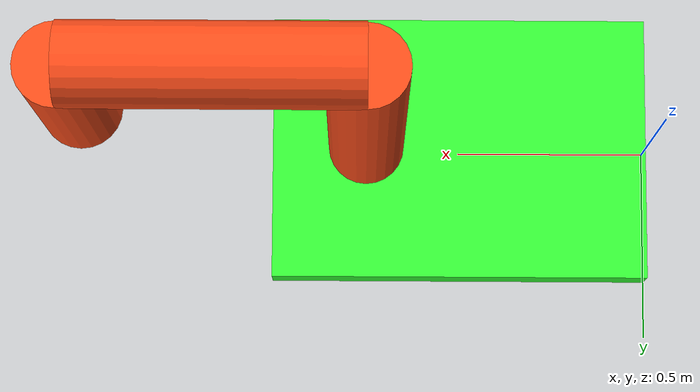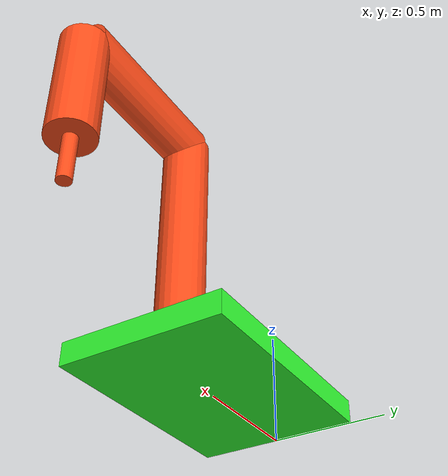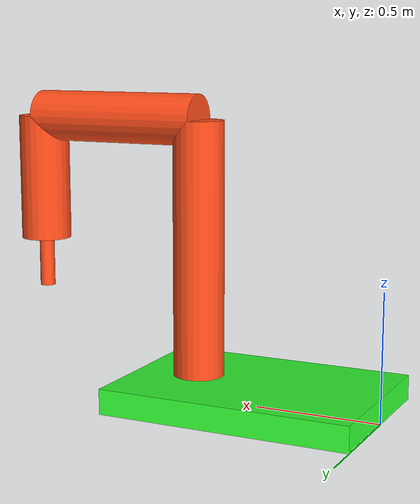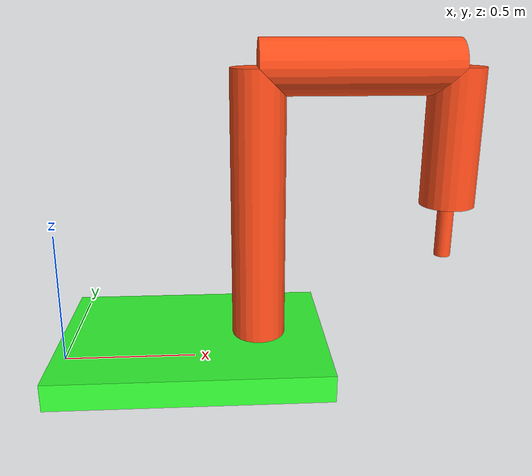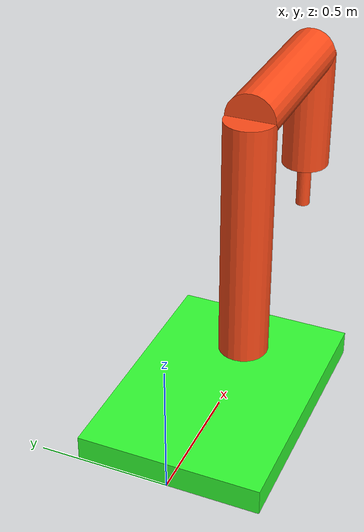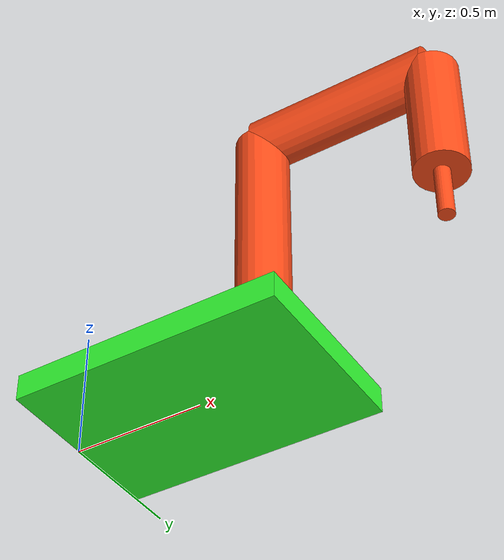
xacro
<?xml version="1.0"?>
<robot xmlns:xacro="http://www.ros.org/wiki/xacro"  name="robot">

    <!-- This is an example of a URDF. -->
    <!-- As we move through the file, new things to note will be pointed out. -->
    <!-- It's not meant an example of GOOD design, but an example of some of the various features of URDF/xacro. -->

    <!-- This will include all the contents of example_include.xacro first. Go check it out! -->
    <xacro:include filename="example_include.xacro" />

    <xacro:property name="arm_1_length" value="1" />
    <xacro:property name="arm_1_radius" value="0.1" />

    <xacro:property name="arm_2_length" value="0.7" />
    <xacro:property name="arm_2_radius" value="0.1" />

    <xacro:property name="arm_3_length" value="0.5" />
    <xacro:property name="arm_3_radius" value="0.1" />

    <xacro:property name="effector_length" value="0.2" />
    <xacro:property name="effector_radius" value="0.03" />

    <!-- This first link called "world" is empty -->
    <link name="world"></link>

    <!-- A simple fixed joint from our empty world link, to our base. -->
    <!-- The base origin is offset from the world origin. -->
    <joint name="base_joint" type="fixed">
        <origin xyz="0.5 0.0 0" rpy="0 0 0"/>
        <parent link="world"/>
        <child link="base_link"/>
    </joint>

    <!-- base_link is a large rectangular plate. Some things to note: -->
    <!-- - We set the visual origin Z to half the box height, so that the link origin sits at the bottom of the box -->
    <!-- - We set the collision to be identical to the visual -->
    <!-- - We specified the colour manually (but still need to enter a name) -->
    <!-- - We specified all the inertial parameters manually -->
    <link name="base_link">
        <visual>
            <origin xyz="0 0 0.05" rpy="0 0 0"/>
            <geometry>
                <box size="1.0 0.7 0.1" />
            </geometry>
            <material name="green">
                <color rgba="0.2 1 0.2 1"/>
            </material>
        </visual>
        <collision>
            <origin xyz="0 0 0.05" rpy="0 0 0"/>
            <geometry>
                <box size="1.0 0.7 0.1" />
            </geometry>
        </collision>
        <inertial>
            <origin xyz="0 0 0.05" rpy="0 0 0"/>
            <mass value="12" />
            <inertia ixx="2.26" ixy="0.0" ixz="0.0" iyy="6.26" iyz="0.0" izz="8.5" />
        </inertial>
    </link>

    <joint name="arm_1_joint" type="revolute">
        <origin xyz="0.25 0 0.10" rpy="0 0 0"/>
        <parent link="base_link"/>
        <child link="arm_1_link"/>
        <axis xyz="0 0 1"/>
        <limit lower="0" upper="${pi}" velocity="100" effort="100"/>
    </joint>

    <!-- arm_link describes the arm -->
    <!-- - We use the "property" feature to define the arm length and radius and use them multiple times -->
    <!-- - The visual/collision origin is set to halfway along the length (similar to the box), but also with a rotation (again using the mathematical features). -->
    <!--   This is because the cylinder extends along the Z axis by default, but we want it to be along the X axis (when the joint is at 0) -->

    <link name="arm_1_link">
        <visual>
            <origin xyz="0 0 ${arm_1_length/2}" rpy="0 0 0"/>
            <geometry>
                <cylinder length="${arm_1_length}" radius="${arm_1_radius}" />
            </geometry>
            <material name="orange" />
        </visual>
        <collision>
            <origin xyz="0 0 ${arm_1_length/2}" rpy="0 0 0"/>
            <geometry>
                <cylinder length="${arm_1_length}" radius="${arm_1_radius}" />
            </geometry>
        </collision>
        <xacro:inertial_cylinder mass="1.0" length="${arm_1_length}" radius="${arm_1_radius}">
            <origin xyz="0 0 ${arm_1_length/2}" rpy="0 0 0"/>
        </xacro:inertial_cylinder>
    </link>

    <joint name="arm_2_joint" type="revolute">
        <origin xyz="0.0 0 ${arm_1_length}" rpy="${pi/2} 0 0"/>
        <parent link="arm_1_link"/>
        <child link="arm_2_link"/>
        <axis xyz="0 0 1"/>
        <limit lower="${-pi/4}" upper="${pi/4}" velocity="100" effort="100"/>
    </joint>

    <link name="arm_2_link">
        <visual>
            <origin xyz="${arm_2_length/2} 0 0" rpy="0 ${-pi/2} 0"/>
            <geometry>
                <cylinder length="${arm_2_length}" radius="${arm_2_radius}" />
            </geometry>
            <material name="orange" />
        </visual>
        <collision>
            <origin xyz="${arm_2_length/2} 0 0" rpy="0 ${-pi/2} 0"/>
            <geometry>
                <cylinder length="${arm_2_length}" radius="${arm_2_radius}" />
            </geometry>
        </collision>
        <xacro:inertial_cylinder mass="1.0" length="${arm_2_length}" radius="${arm_2_radius}">
            <origin xyz="${arm_2_length/2} 0 0" rpy="0 ${-pi/2} 0"/>
        </xacro:inertial_cylinder>
    </link>

    <joint name="arm_3_joint" type="revolute">
        <origin xyz="${arm_2_length} 0 0" rpy="0 ${pi/2} 0"/>
        <parent link="arm_2_link"/>
        <child link="arm_3_link"/>
        <axis xyz="0 0 1"/>
        <limit lower="${-pi}" upper="${pi}" velocity="100" effort="100"/>
    </joint>

    <link name="arm_3_link">
        <visual>
            <origin xyz="0 -${arm_3_length/2} 0" rpy="${pi/2} 0 0"/>
            <geometry>
                <cylinder length="${arm_3_length}" radius="${arm_3_radius}" />
            </geometry>
            <material name="orange" />
        </visual>
        <collision>
            <origin xyz="0 -${arm_3_length/2} 0" rpy="${pi/2} 0 0"/>
            <geometry>
                <cylinder length="${arm_3_length}" radius="${arm_3_radius}" />
            </geometry>
        </collision>
        <xacro:inertial_cylinder mass="1.0" length="${arm_3_length}" radius="${arm_3_radius}">
            <origin xyz="0 -${arm_3_length/2} 0" rpy="${pi/2} 0 0"/>
        </xacro:inertial_cylinder>
    </link>

    <joint name="effector_joint" type="fixed">
        <origin xyz="0 ${-arm_3_length-effector_length} 0" rpy="${pi/2} 0 0"/>
        <parent link="arm_3_link"/>
        <child link="effector_link"/>
    </joint>

    <link name="effector_link">
    <visual>
            <origin xyz="0 0 ${-effector_length/2}" rpy="0 0 0"/>
            <geometry>
                <cylinder length="${effector_length}" radius="${effector_radius}" />
            </geometry>
            <material name="orange" />
        </visual>
        <collision>
            <origin xyz="0 0 ${-effector_length/2}" rpy="0 0 0"/>
            <geometry>
                <cylinder length="${effector_length}" radius="${effector_radius}" />
            </geometry>
        </collision>
        <xacro:inertial_cylinder mass="1.0" length="${arm_3_length}" radius="${arm_3_radius}">
            <origin xyz="0 0 ${-effector_length/2}" rpy="0 0 0"/>
        </xacro:inertial_cylinder>
    </link>

</robot>

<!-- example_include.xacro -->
<robot xmlns:xacro="http://www.ros.org/wiki/xacro" >

    <!-- This file is not a robot in and of itself, it just contains some useful tags that could be included in any robot -->

    <!-- Specify some colours -->

    <material name="white">
        <color rgba="1 1 1 1"/>
    </material>

    <material name="orange">
        <color rgba="1 0.3 0.1 1"/>
    </material>

    <material name="blue">
        <color rgba="0.2 0.2 1 1"/>
    </material>

    <material name="red">
        <color rgba="0.9 0.1 0.1 1"/>
    </material>

    <material name="yellow">
        <color rgba="0.8 0.8 0.0 1"/>
    </material>

    <!-- Specify some standard inertial calculations https://en.wikipedia.org/wiki/List_of_moments_of_inertia -->
    <!-- These make use of xacro's mathematical functionality -->

    <xacro:macro name="inertial_sphere" params="mass radius *origin">
        <inertial>
            <xacro:insert_block name="origin"/>
            <mass value="${mass}" />
            <inertia ixx="${(2/5) * mass * (radius*radius)}" ixy="0.0" ixz="0.0"
                    iyy="${(2/5) * mass * (radius*radius)}" iyz="0.0"
                    izz="${(2/5) * mass * (radius*radius)}" />
        </inertial>
    </xacro:macro>

    <xacro:macro name="inertial_box" params="mass x y z *origin">
        <inertial>
            <xacro:insert_block name="origin"/>
            <mass value="${mass}" />
            <inertia ixx="${(1/12) * mass * (y*y+z*z)}" ixy="0.0" ixz="0.0"
                    iyy="${(1/12) * mass * (x*x+z*z)}" iyz="0.0"
                    izz="${(1/12) * mass * (x*x+y*y)}" />
        </inertial>
    </xacro:macro>

    <xacro:macro name="inertial_cylinder" params="mass length radius *origin">
        <inertial>
            <xacro:insert_block name="origin"/>
            <mass value="${mass}" />
            <inertia ixx="${(1/12) * mass * (3*radius*radius + length*length)}" ixy="0.0" ixz="0.0"
                    iyy="${(1/12) * mass * (3*radius*radius + length*length)}" iyz="0.0"
                    izz="${(1/2) * mass * (radius*radius)}" />
        </inertial>
    </xacro:macro>

</robot>
